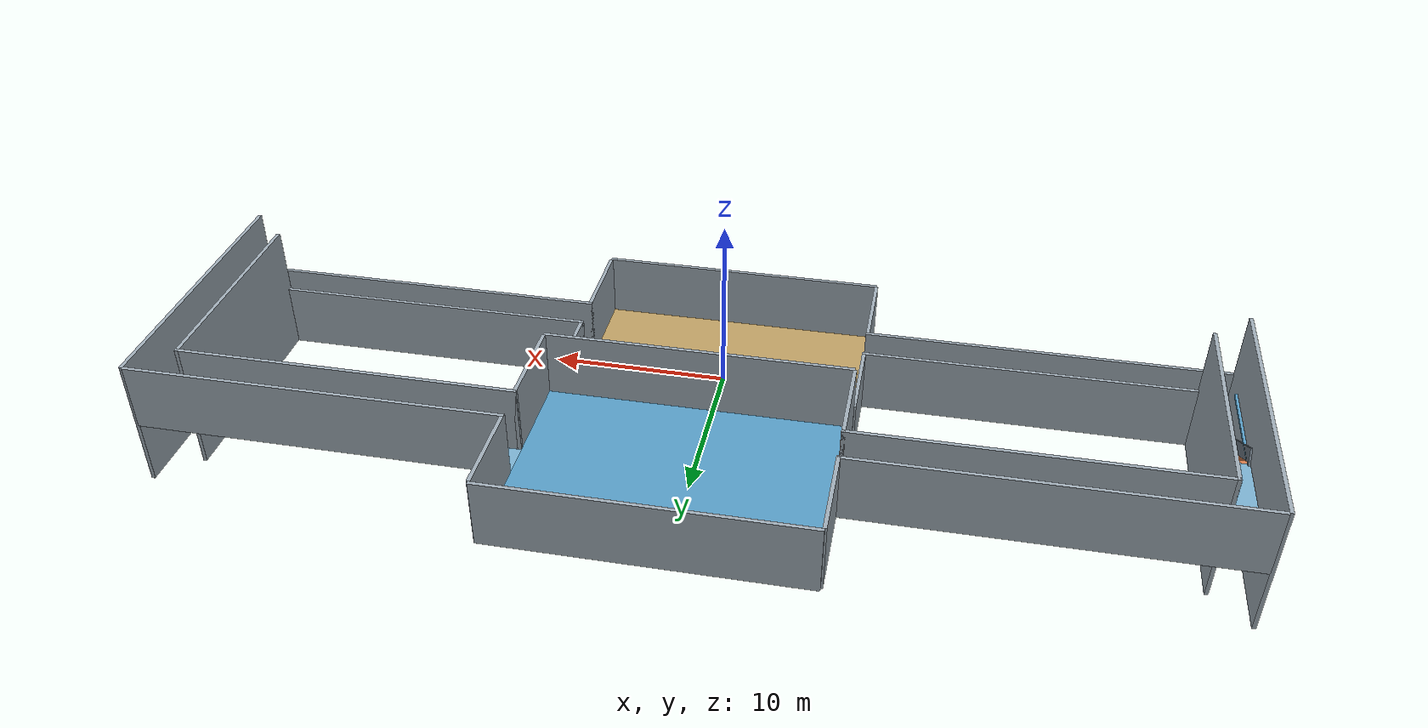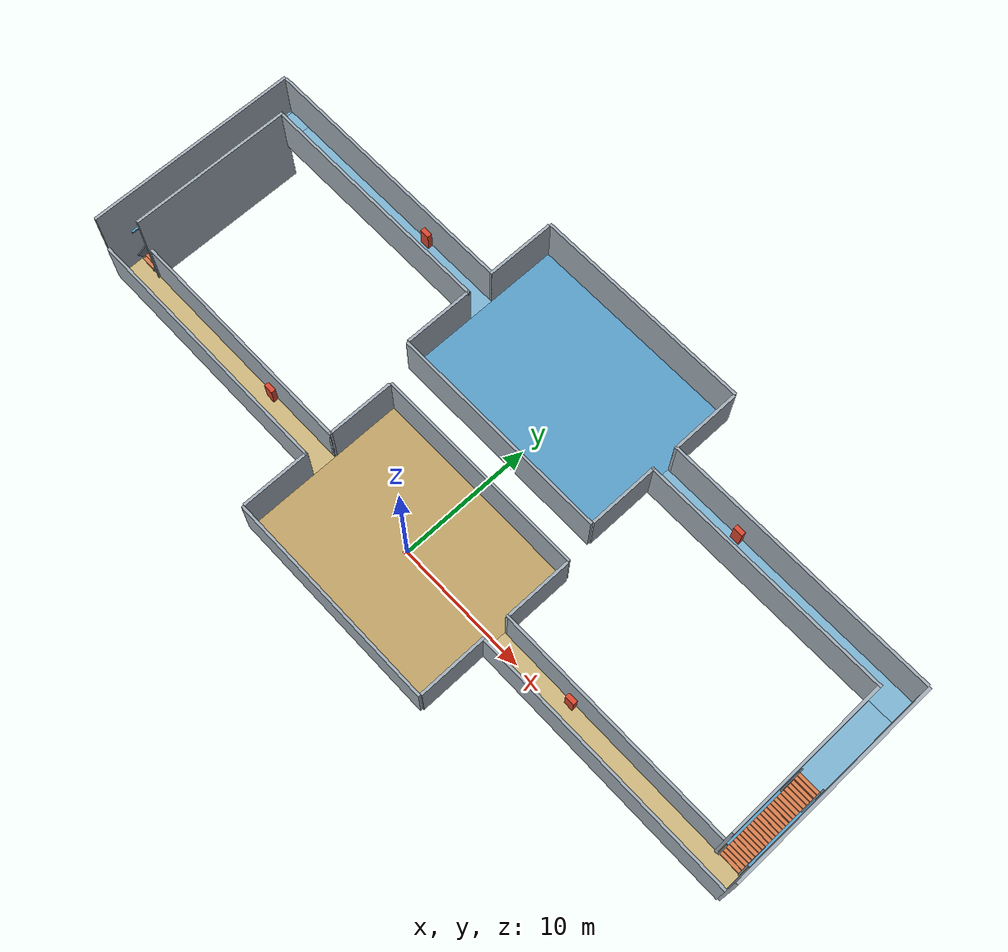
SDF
<sdf version="1.6"><world name="inspection_building"><gravity>0 0 -9.81</gravity><include><uri>model://sun</uri></include><physics name="ode" type="ode"><max_step_size>.002</max_step_size><real_time_update_rate>500</real_time_update_rate></physics><scene><shadows>false</shadows><ambient>.65 .65 .65 1</ambient><background>.78 .83 .90 1</background></scene><gui fullscreen="false"><camera name="user_camera"><pose>0 6.8 70 0 1.5707 0</pose><view_controller>orbit</view_controller></camera></gui><model name="open_two_floor_building"><static>true</static><link name="lower_hall_floor"><pose>0.0 0.0 -0.06 0 0 0</pose><collision name="lower_hall_floor_collision"><geometry><box><size>16 12 0.12</size></box></geometry></collision><visual name="lower_hall_floor_visual"><geometry><box><size>16 12 0.12</size></box></geometry><cast_shadows>false</cast_shadows><material><ambient>.74 .62 .39 1</ambient><diffuse>.74 .62 .39 1</diffuse></material></visual></link><link name="lower_left_corridor_floor"><pose>-18.0 0.0 -0.06 0 0 0</pose><collision name="lower_left_corridor_floor_collision"><geometry><box><size>20 1.8 0.12</size></box></geometry></collision><visual name="lower_left_corridor_floor_visual"><geometry><box><size>20 1.8 0.12</size></box></geometry><cast_shadows>false</cast_shadows><material><ambient>.79 .70 .48 1</ambient><diffuse>.79 .70 .48 1</diffuse></material></visual></link><link name="lower_right_corridor_floor"><pose>18.0 0.0 -0.06 0 0 0</pose><collision name="lower_right_corridor_floor_collision"><geometry><box><size>20 1.8 0.12</size></box></geometry></collision><visual name="lower_right_corridor_floor_visual"><geometry><box><size>20 1.8 0.12</size></box></geometry><cast_shadows>false</cast_shadows><material><ambient>.79 .70 .48 1</ambient><diffuse>.79 .70 .48 1</diffuse></material></visual></link><link name="lower_hall_south_wall"><pose>0.0 -6.1 1.8 0 0 0</pose><collision name="lower_hall_south_wall_collision"><geometry><box><size>16.2 0.2 3.6</size></box></geometry></collision><visual name="lower_hall_south_wall_visual"><geometry><box><size>16.2 0.2 3.6</size></box></geometry><cast_shadows>false</cast_shadows><material><ambient>.62 .67 .71 1</ambient><diffuse>.62 .67 .71 1</diffuse></material></visual></link><link name="lower_hall_north_wall"><pose>0.0 6.1 1.8 0 0 0</pose><collision name="lower_hall_north_wall_collision"><geometry><box><size>16.2 0.2 3.6</size></box></geometry></collision><visual name="lower_hall_north_wall_visual"><geometry><box><size>16.2 0.2 3.6</size></box></geometry><cast_shadows>false</cast_shadows><material><ambient>.62 .67 .71 1</ambient><diffuse>.62 .67 .71 1</diffuse></material></visual></link><link name="lower_hall_left_south"><pose>-8.1 -3.45 1.8 0 0 0</pose><collision name="lower_hall_left_south_collision"><geometry><box><size>0.2 5.1 3.6</size></box></geometry></collision><visual name="lower_hall_left_south_visual"><geometry><box><size>0.2 5.1 3.6</size></box></geometry><cast_shadows>false</cast_shadows><material><ambient>.62 .67 .71 1</ambient><diffuse>.62 .67 .71 1</diffuse></material></visual></link><link name="lower_hall_left_north"><pose>-8.1 3.45 1.8 0 0 0</pose><collision name="lower_hall_left_north_collision"><geometry><box><size>0.2 5.1 3.6</size></box></geometry></collision><visual name="lower_hall_left_north_visual"><geometry><box><size>0.2 5.1 3.6</size></box></geometry><cast_shadows>false</cast_shadows><material><ambient>.62 .67 .71 1</ambient><diffuse>.62 .67 .71 1</diffuse></material></visual></link><link name="lower_hall_right_south"><pose>8.1 -3.45 1.8 0 0 0</pose><collision name="lower_hall_right_south_collision"><geometry><box><size>0.2 5.1 3.6</size></box></geometry></collision><visual name="lower_hall_right_south_visual"><geometry><box><size>0.2 5.1 3.6</size></box></geometry><cast_shadows>false</cast_shadows><material><ambient>.62 .67 .71 1</ambient><diffuse>.62 .67 .71 1</diffuse></material></visual></link><link name="lower_hall_right_north"><pose>8.1 3.45 1.8 0 0 0</pose><collision name="lower_hall_right_north_collision"><geometry><box><size>0.2 5.1 3.6</size></box></geometry></collision><visual name="lower_hall_right_north_visual"><geometry><box><size>0.2 5.1 3.6</size></box></geometry><cast_shadows>false</cast_shadows><material><ambient>.62 .67 .71 1</ambient><diffuse>.62 .67 .71 1</diffuse></material></visual></link><link name="lower_left_corridor_south"><pose>-18.0 -1 1.8 0 0 0</pose><collision name="lower_left_corridor_south_collision"><geometry><box><size>20 0.2 3.6</size></box></geometry></collision><visual name="lower_left_corridor_south_visual"><geometry><box><size>20 0.2 3.6</size></box></geometry><cast_shadows>false</cast_shadows><material><ambient>.62 .67 .71 1</ambient><diffuse>.62 .67 .71 1</diffuse></material></visual></link><link name="lower_right_corridor_south"><pose>18.0 -1 1.8 0 0 0</pose><collision name="lower_right_corridor_south_collision"><geometry><box><size>20 0.2 3.6</size></box></geometry></collision><visual name="lower_right_corridor_south_visual"><geometry><box><size>20 0.2 3.6</size></box></geometry><cast_shadows>false</cast_shadows><material><ambient>.62 .67 .71 1</ambient><diffuse>.62 .67 .71 1</diffuse></material></visual></link><link name="lower_left_corridor_north"><pose>-17.1 1 1.8 0 0 0</pose><collision name="lower_left_corridor_north_collision"><geometry><box><size>18.2 0.2 3.6</size></box></geometry></collision><visual name="lower_left_corridor_north_visual"><geometry><box><size>18.2 0.2 3.6</size></box></geometry><cast_shadows>false</cast_shadows><material><ambient>.62 .67 .71 1</ambient><diffuse>.62 .67 .71 1</diffuse></material></visual></link><link name="lower_right_corridor_north"><pose>17.1 1 1.8 0 0 0</pose><collision name="lower_right_corridor_north_collision"><geometry><box><size>18.2 0.2 3.6</size></box></geometry></collision><visual name="lower_right_corridor_north_visual"><geometry><box><size>18.2 0.2 3.6</size></box></geometry><cast_shadows>false</cast_shadows><material><ambient>.62 .67 .71 1</ambient><diffuse>.62 .67 .71 1</diffuse></material></visual></link><link name="upper_hall_floor"><pose>0.0 13.8 3.54 0 0 0</pose><collision name="upper_hall_floor_collision"><geometry><box><size>16 12.0 0.12</size></box></geometry></collision><visual name="upper_hall_floor_visual"><geometry><box><size>16 12.0 0.12</size></box></geometry><cast_shadows>false</cast_shadows><material><ambient>.34 .61 .77 1</ambient><diffuse>.34 .61 .77 1</diffuse></material></visual></link><link name="upper_left_corridor_floor"><pose>-18.0 13.8 3.54 0 0 0</pose><collision name="upper_left_corridor_floor_collision"><geometry><box><size>20 1.799999999999999 0.12</size></box></geometry></collision><visual name="upper_left_corridor_floor_visual"><geometry><box><size>20 1.799999999999999 0.12</size></box></geometry><cast_shadows>false</cast_shadows><material><ambient>.48 .69 .81 1</ambient><diffuse>.48 .69 .81 1</diffuse></material></visual></link><link name="upper_right_corridor_floor"><pose>18.0 13.8 3.54 0 0 0</pose><collision name="upper_right_corridor_floor_collision"><geometry><box><size>20 1.799999999999999 0.12</size></box></geometry></collision><visual name="upper_right_corridor_floor_visual"><geometry><box><size>20 1.799999999999999 0.12</size></box></geometry><cast_shadows>false</cast_shadows><material><ambient>.48 .69 .81 1</ambient><diffuse>.48 .69 .81 1</diffuse></material></visual></link><link name="upper_hall_front_wall"><pose>0.0 7.7 5.4 0 0 0</pose><collision name="upper_hall_front_wall_collision"><geometry><box><size>16.2 0.2 3.6</size></box></geometry></collision><visual name="upper_hall_front_wall_visual"><geometry><box><size>16.2 0.2 3.6</size></box></geometry><cast_shadows>false</cast_shadows><material><ambient>.62 .67 .71 1</ambient><diffuse>.62 .67 .71 1</diffuse></material></visual></link><link name="upper_hall_back_wall"><pose>0.0 19.9 5.4 0 0 0</pose><collision name="upper_hall_back_wall_collision"><geometry><box><size>16.2 0.2 3.6</size></box></geometry></collision><visual name="upper_hall_back_wall_visual"><geometry><box><size>16.2 0.2 3.6</size></box></geometry><cast_shadows>false</cast_shadows><material><ambient>.62 .67 .71 1</ambient><diffuse>.62 .67 .71 1</diffuse></material></visual></link><link name="upper_hall_left_front"><pose>-8.1 10.35 5.4 0 0 0</pose><collision name="upper_hall_left_front_collision"><geometry><box><size>0.2 5.1000000000000005 3.6</size></box></geometry></collision><visual name="upper_hall_left_front_visual"><geometry><box><size>0.2 5.1000000000000005 3.6</size></box></geometry><cast_shadows>false</cast_shadows><material><ambient>.62 .67 .71 1</ambient><diffuse>.62 .67 .71 1</diffuse></material></visual></link><link name="upper_hall_left_back"><pose>-8.1 17.25 5.4 0 0 0</pose><collision name="upper_hall_left_back_collision"><geometry><box><size>0.2 5.100000000000001 3.6</size></box></geometry></collision><visual name="upper_hall_left_back_visual"><geometry><box><size>0.2 5.100000000000001 3.6</size></box></geometry><cast_shadows>false</cast_shadows><material><ambient>.62 .67 .71 1</ambient><diffuse>.62 .67 .71 1</diffuse></material></visual></link><link name="upper_hall_right_front"><pose>8.1 10.35 5.4 0 0 0</pose><collision name="upper_hall_right_front_collision"><geometry><box><size>0.2 5.1000000000000005 3.6</size></box></geometry></collision><visual name="upper_hall_right_front_visual"><geometry><box><size>0.2 5.1000000000000005 3.6</size></box></geometry><cast_shadows>false</cast_shadows><material><ambient>.62 .67 .71 1</ambient><diffuse>.62 .67 .71 1</diffuse></material></visual></link><link name="upper_hall_right_back"><pose>8.1 17.25 5.4 0 0 0</pose><collision name="upper_hall_right_back_collision"><geometry><box><size>0.2 5.100000000000001 3.6</size></box></geometry></collision><visual name="upper_hall_right_back_visual"><geometry><box><size>0.2 5.100000000000001 3.6</size></box></geometry><cast_shadows>false</cast_shadows><material><ambient>.62 .67 .71 1</ambient><diffuse>.62 .67 .71 1</diffuse></material></visual></link><link name="upper_left_corridor_front"><pose>-17.1 12.8 5.4 0 0 0</pose><collision name="upper_left_corridor_front_collision"><geometry><box><size>18.2 0.2 3.6</size></box></geometry></collision><visual name="upper_left_corridor_front_visual"><geometry><box><size>18.2 0.2 3.6</size></box></geometry><cast_shadows>false</cast_shadows><material><ambient>.62 .67 .71 1</ambient><diffuse>.62 .67 .71 1</diffuse></material></visual></link><link name="upper_right_corridor_front"><pose>17.1 12.8 5.4 0 0 0</pose><collision name="upper_right_corridor_front_collision"><geometry><box><size>18.2 0.2 3.6</size></box></geometry></collision><visual name="upper_right_corridor_front_visual"><geometry><box><size>18.2 0.2 3.6</size></box></geometry><cast_shadows>false</cast_shadows><material><ambient>.62 .67 .71 1</ambient><diffuse>.62 .67 .71 1</diffuse></material></visual></link><link name="upper_left_corridor_back"><pose>-18.0 14.8 5.4 0 0 0</pose><collision name="upper_left_corridor_back_collision"><geometry><box><size>20 0.2 3.6</size></box></geometry></collision><visual name="upper_left_corridor_back_visual"><geometry><box><size>20 0.2 3.6</size></box></geometry><cast_shadows>false</cast_shadows><material><ambient>.62 .67 .71 1</ambient><diffuse>.62 .67 .71 1</diffuse></material></visual></link><link name="upper_right_corridor_back"><pose>18.0 14.8 5.4 0 0 0</pose><collision name="upper_right_corridor_back_collision"><geometry><box><size>20 0.2 3.6</size></box></geometry></collision><visual name="upper_right_corridor_back_visual"><geometry><box><size>20 0.2 3.6</size></box></geometry><cast_shadows>false</cast_shadows><material><ambient>.62 .67 .71 1</ambient><diffuse>.62 .67 .71 1</diffuse></material></visual></link><link name="left_stair_base"><pose>-27.1 3.9000000000000004 -0.06 0 0 0</pose><collision name="left_stair_base_collision"><geometry><box><size>1.7999999999999972 6.0 0.12</size></box></geometry></collision><visual name="left_stair_base_visual"><geometry><box><size>1.7999999999999972 6.0 0.12</size></box></geometry><cast_shadows>false</cast_shadows><material><ambient>.72 .61 .39 1</ambient><diffuse>.72 .61 .39 1</diffuse></material></visual></link><link name="left_upper_stair_ledge_-1"><pose>-27.925 3.9000000000000004 3.54 0 0 0</pose><collision name="left_upper_stair_ledge_-1_collision"><geometry><box><size>0.14999999999999858 6.0 0.12</size></box></geometry></collision><visual name="left_upper_stair_ledge_-1_visual"><geometry><box><size>0.14999999999999858 6.0 0.12</size></box></geometry><cast_shadows>false</cast_shadows><material><ambient>.34 .61 .77 1</ambient><diffuse>.34 .61 .77 1</diffuse></material></visual></link><link name="left_upper_stair_ledge_1"><pose>-26.275000000000002 3.9000000000000004 3.54 0 0 0</pose><collision name="left_upper_stair_ledge_1_collision"><geometry><box><size>0.14999999999999858 6.0 0.12</size></box></geometry></collision><visual name="left_upper_stair_ledge_1_visual"><geometry><box><size>0.14999999999999858 6.0 0.12</size></box></geometry><cast_shadows>false</cast_shadows><material><ambient>.34 .61 .77 1</ambient><diffuse>.34 .61 .77 1</diffuse></material></visual></link><link name="left_upper_return_corridor"><pose>-27.1 10.8 3.54 0 0 0</pose><collision name="left_upper_return_corridor_collision"><geometry><box><size>1.7999999999999972 7.799999999999999 0.12</size></box></geometry></collision><visual name="left_upper_return_corridor_visual"><geometry><box><size>1.7999999999999972 7.799999999999999 0.12</size></box></geometry><cast_shadows>false</cast_shadows><material><ambient>.48 .69 .81 1</ambient><diffuse>.48 .69 .81 1</diffuse></material></visual></link><link name="left_shaft_outer_wall"><pose>-28.1 6.9 3.6 0 0 0</pose><collision name="left_shaft_outer_wall_collision"><geometry><box><size>0.2 15.8 7.2</size></box></geometry></collision><visual name="left_shaft_outer_wall_visual"><geometry><box><size>0.2 15.8 7.2</size></box></geometry><cast_shadows>false</cast_shadows><material><ambient>.62 .67 .71 1</ambient><diffuse>.62 .67 .71 1</diffuse></material></visual></link><link name="left_shaft_inner_wall"><pose>-26.1 6.8500000000000005 3.6 0 0 0</pose><collision name="left_shaft_inner_wall_collision"><geometry><box><size>0.2 12.1 7.2</size></box></geometry></collision><visual name="left_shaft_inner_wall_visual"><geometry><box><size>0.2 12.1 7.2</size></box></geometry><cast_shadows>false</cast_shadows><material><ambient>.62 .67 .71 1</ambient><diffuse>.62 .67 .71 1</diffuse></material></visual></link><link name="left_stair_step_0"><pose>-27.1 1.025 0.075 0 0 0</pose><collision name="left_stair_step_0_collision"><geometry><box><size>1.5 0.25 0.15</size></box></geometry></collision><visual name="left_stair_step_0_visual"><geometry><box><size>1.5 0.25 0.15</size></box></geometry><cast_shadows>false</cast_shadows><material><ambient>.83 .48 .29 1</ambient><diffuse>.83 .48 .29 1</diffuse></material></visual></link><link name="left_stair_step_1"><pose>-27.1 1.275 0.15 0 0 0</pose><collision name="left_stair_step_1_collision"><geometry><box><size>1.5 0.25 0.3</size></box></geometry></collision><visual name="left_stair_step_1_visual"><geometry><box><size>1.5 0.25 0.3</size></box></geometry><cast_shadows>false</cast_shadows><material><ambient>.83 .48 .29 1</ambient><diffuse>.83 .48 .29 1</diffuse></material></visual></link><link name="left_stair_step_2"><pose>-27.1 1.525 0.22499999999999998 0 0 0</pose><collision name="left_stair_step_2_collision"><geometry><box><size>1.5 0.25 0.44999999999999996</size></box></geometry></collision><visual name="left_stair_step_2_visual"><geometry><box><size>1.5 0.25 0.44999999999999996</size></box></geometry><cast_shadows>false</cast_shadows><material><ambient>.83 .48 .29 1</ambient><diffuse>.83 .48 .29 1</diffuse></material></visual></link><link name="left_stair_step_3"><pose>-27.1 1.775 0.3 0 0 0</pose><collision name="left_stair_step_3_collision"><geometry><box><size>1.5 0.25 0.6</size></box></geometry></collision><visual name="left_stair_step_3_visual"><geometry><box><size>1.5 0.25 0.6</size></box></geometry><cast_shadows>false</cast_shadows><material><ambient>.83 .48 .29 1</ambient><diffuse>.83 .48 .29 1</diffuse></material></visual></link><link name="left_stair_step_4"><pose>-27.1 2.025 0.375 0 0 0</pose><collision name="left_stair_step_4_collision"><geometry><box><size>1.5 0.25 0.75</size></box></geometry></collision><visual name="left_stair_step_4_visual"><geometry><box><size>1.5 0.25 0.75</size></box></geometry><cast_shadows>false</cast_shadows><material><ambient>.83 .48 .29 1</ambient><diffuse>.83 .48 .29 1</diffuse></material></visual></link><link name="left_stair_step_5"><pose>-27.1 2.275 0.44999999999999996 0 0 0</pose><collision name="left_stair_step_5_collision"><geometry><box><size>1.5 0.25 0.8999999999999999</size></box></geometry></collision><visual name="left_stair_step_5_visual"><geometry><box><size>1.5 0.25 0.8999999999999999</size></box></geometry><cast_shadows>false</cast_shadows><material><ambient>.83 .48 .29 1</ambient><diffuse>.83 .48 .29 1</diffuse></material></visual></link><link name="left_stair_step_6"><pose>-27.1 2.525 0.525 0 0 0</pose><collision name="left_stair_step_6_collision"><geometry><box><size>1.5 0.25 1.05</size></box></geometry></collision><visual name="left_stair_step_6_visual"><geometry><box><size>1.5 0.25 1.05</size></box></geometry><cast_shadows>false</cast_shadows><material><ambient>.83 .48 .29 1</ambient><diffuse>.83 .48 .29 1</diffuse></material></visual></link><link name="left_stair_step_7"><pose>-27.1 2.775 0.6 0 0 0</pose><collision name="left_stair_step_7_collision"><geometry><box><size>1.5 0.25 1.2</size></box></geometry></collision><visual name="left_stair_step_7_visual"><geometry><box><size>1.5 0.25 1.2</size></box></geometry><cast_shadows>false</cast_shadows><material><ambient>.83 .48 .29 1</ambient><diffuse>.83 .48 .29 1</diffuse></material></visual></link><link name="left_stair_step_8"><pose>-27.1 3.025 0.6749999999999999 0 0 0</pose><collision name="left_stair_step_8_collision"><geometry><box><size>1.5 0.25 1.3499999999999999</size></box></geometry></collision><visual name="left_stair_step_8_visual"><geometry><box><size>1.5 0.25 1.3499999999999999</size></box></geometry><cast_shadows>false</cast_shadows><material><ambient>.83 .48 .29 1</ambient><diffuse>.83 .48 .29 1</diffuse></material></visual></link><link name="left_stair_step_9"><pose>-27.1 3.275 0.75 0 0 0</pose><collision name="left_stair_step_9_collision"><geometry><box><size>1.5 0.25 1.5</size></box></geometry></collision><visual name="left_stair_step_9_visual"><geometry><box><size>1.5 0.25 1.5</size></box></geometry><cast_shadows>false</cast_shadows><material><ambient>.83 .48 .29 1</ambient><diffuse>.83 .48 .29 1</diffuse></material></visual></link><link name="left_stair_step_10"><pose>-27.1 3.525 0.825 0 0 0</pose><collision name="left_stair_step_10_collision"><geometry><box><size>1.5 0.25 1.65</size></box></geometry></collision><visual name="left_stair_step_10_visual"><geometry><box><size>1.5 0.25 1.65</size></box></geometry><cast_shadows>false</cast_shadows><material><ambient>.83 .48 .29 1</ambient><diffuse>.83 .48 .29 1</diffuse></material></visual></link><link name="left_stair_step_11"><pose>-27.1 3.775 0.8999999999999999 0 0 0</pose><collision name="left_stair_step_11_collision"><geometry><box><size>1.5 0.25 1.7999999999999998</size></box></geometry></collision><visual name="left_stair_step_11_visual"><geometry><box><size>1.5 0.25 1.7999999999999998</size></box></geometry><cast_shadows>false</cast_shadows><material><ambient>.83 .48 .29 1</ambient><diffuse>.83 .48 .29 1</diffuse></material></visual></link><link name="left_stair_step_12"><pose>-27.1 4.025 0.975 0 0 0</pose><collision name="left_stair_step_12_collision"><geometry><box><size>1.5 0.25 1.95</size></box></geometry></collision><visual name="left_stair_step_12_visual"><geometry><box><size>1.5 0.25 1.95</size></box></geometry><cast_shadows>false</cast_shadows><material><ambient>.83 .48 .29 1</ambient><diffuse>.83 .48 .29 1</diffuse></material></visual></link><link name="left_stair_step_13"><pose>-27.1 4.275 1.05 0 0 0</pose><collision name="left_stair_step_13_collision"><geometry><box><size>1.5 0.25 2.1</size></box></geometry></collision><visual name="left_stair_step_13_visual"><geometry><box><size>1.5 0.25 2.1</size></box></geometry><cast_shadows>false</cast_shadows><material><ambient>.83 .48 .29 1</ambient><diffuse>.83 .48 .29 1</diffuse></material></visual></link><link name="left_stair_step_14"><pose>-27.1 4.525 1.125 0 0 0</pose><collision name="left_stair_step_14_collision"><geometry><box><size>1.5 0.25 2.25</size></box></geometry></collision><visual name="left_stair_step_14_visual"><geometry><box><size>1.5 0.25 2.25</size></box></geometry><cast_shadows>false</cast_shadows><material><ambient>.83 .48 .29 1</ambient><diffuse>.83 .48 .29 1</diffuse></material></visual></link><link name="left_stair_step_15"><pose>-27.1 4.775 1.2 0 0 0</pose><collision name="left_stair_step_15_collision"><geometry><box><size>1.5 0.25 2.4</size></box></geometry></collision><visual name="left_stair_step_15_visual"><geometry><box><size>1.5 0.25 2.4</size></box></geometry><cast_shadows>false</cast_shadows><material><ambient>.83 .48 .29 1</ambient><diffuse>.83 .48 .29 1</diffuse></material></visual></link><link name="left_stair_step_16"><pose>-27.1 5.025 1.275 0 0 0</pose><collision name="left_stair_step_16_collision"><geometry><box><size>1.5 0.25 2.55</size></box></geometry></collision><visual name="left_stair_step_16_visual"><geometry><box><size>1.5 0.25 2.55</size></box></geometry><cast_shadows>false</cast_shadows><material><ambient>.83 .48 .29 1</ambient><diffuse>.83 .48 .29 1</diffuse></material></visual></link><link name="left_stair_step_17"><pose>-27.1 5.275 1.3499999999999999 0 0 0</pose><collision name="left_stair_step_17_collision"><geometry><box><size>1.5 0.25 2.6999999999999997</size></box></geometry></collision><visual name="left_stair_step_17_visual"><geometry><box><size>1.5 0.25 2.6999999999999997</size></box></geometry><cast_shadows>false</cast_shadows><material><ambient>.83 .48 .29 1</ambient><diffuse>.83 .48 .29 1</diffuse></material></visual></link><link name="left_stair_step_18"><pose>-27.1 5.525 1.425 0 0 0</pose><collision name="left_stair_step_18_collision"><geometry><box><size>1.5 0.25 2.85</size></box></geometry></collision><visual name="left_stair_step_18_visual"><geometry><box><size>1.5 0.25 2.85</size></box></geometry><cast_shadows>false</cast_shadows><material><ambient>.83 .48 .29 1</ambient><diffuse>.83 .48 .29 1</diffuse></material></visual></link><link name="left_stair_step_19"><pose>-27.1 5.775 1.5 0 0 0</pose><collision name="left_stair_step_19_collision"><geometry><box><size>1.5 0.25 3.0</size></box></geometry></collision><visual name="left_stair_step_19_visual"><geometry><box><size>1.5 0.25 3.0</size></box></geometry><cast_shadows>false</cast_shadows><material><ambient>.83 .48 .29 1</ambient><diffuse>.83 .48 .29 1</diffuse></material></visual></link><link name="left_stair_step_20"><pose>-27.1 6.025 1.575 0 0 0</pose><collision name="left_stair_step_20_collision"><geometry><box><size>1.5 0.25 3.15</size></box></geometry></collision><visual name="left_stair_step_20_visual"><geometry><box><size>1.5 0.25 3.15</size></box></geometry><cast_shadows>false</cast_shadows><material><ambient>.83 .48 .29 1</ambient><diffuse>.83 .48 .29 1</diffuse></material></visual></link><link name="left_stair_step_21"><pose>-27.1 6.275 1.65 0 0 0</pose><collision name="left_stair_step_21_collision"><geometry><box><size>1.5 0.25 3.3</size></box></geometry></collision><visual name="left_stair_step_21_visual"><geometry><box><size>1.5 0.25 3.3</size></box></geometry><cast_shadows>false</cast_shadows><material><ambient>.83 .48 .29 1</ambient><diffuse>.83 .48 .29 1</diffuse></material></visual></link><link name="left_stair_step_22"><pose>-27.1 6.525 1.7249999999999999 0 0 0</pose><collision name="left_stair_step_22_collision"><geometry><box><size>1.5 0.25 3.4499999999999997</size></box></geometry></collision><visual name="left_stair_step_22_visual"><geometry><box><size>1.5 0.25 3.4499999999999997</size></box></geometry><cast_shadows>false</cast_shadows><material><ambient>.83 .48 .29 1</ambient><diffuse>.83 .48 .29 1</diffuse></material></visual></link><link name="left_stair_step_23"><pose>-27.1 6.775 1.7999999999999998 0 0 0</pose><collision name="left_stair_step_23_collision"><geometry><box><size>1.5 0.25 3.5999999999999996</size></box></geometry></collision><visual name="left_stair_step_23_visual"><geometry><box><size>1.5 0.25 3.5999999999999996</size></box></geometry><cast_shadows>false</cast_shadows><material><ambient>.83 .48 .29 1</ambient><diffuse>.83 .48 .29 1</diffuse></material></visual></link><link name="left_stair_rail_-1"><pose>-27.900000000000002 3.9 2.25 0.5404195002705842 0 0</pose><collision name="left_stair_rail_-1_collision"><geometry><box><size>0.1 6.99714227381436 0.9</size></box></geometry></collision><visual name="left_stair_rail_-1_visual"><geometry><box><size>0.1 6.99714227381436 0.9</size></box></geometry><cast_shadows>false</cast_shadows><material><ambient>.42 .47 .51 1</ambient><diffuse>.42 .47 .51 1</diffuse></material></visual></link><link name="left_stair_rail_1"><pose>-26.3 3.9 2.25 0.5404195002705842 0 0</pose><collision name="left_stair_rail_1_collision"><geometry><box><size>0.1 6.99714227381436 0.9</size></box></geometry></collision><visual name="left_stair_rail_1_visual"><geometry><box><size>0.1 6.99714227381436 0.9</size></box></geometry><cast_shadows>false</cast_shadows><material><ambient>.42 .47 .51 1</ambient><diffuse>.42 .47 .51 1</diffuse></material></visual></link><link name="right_stair_base"><pose>27.1 3.9000000000000004 -0.06 0 0 0</pose><collision name="right_stair_base_collision"><geometry><box><size>1.7999999999999972 6.0 0.12</size></box></geometry></collision><visual name="right_stair_base_visual"><geometry><box><size>1.7999999999999972 6.0 0.12</size></box></geometry><cast_shadows>false</cast_shadows><material><ambient>.72 .61 .39 1</ambient><diffuse>.72 .61 .39 1</diffuse></material></visual></link><link name="right_upper_stair_ledge_-1"><pose>26.275000000000002 3.9000000000000004 3.54 0 0 0</pose><collision name="right_upper_stair_ledge_-1_collision"><geometry><box><size>0.14999999999999858 6.0 0.12</size></box></geometry></collision><visual name="right_upper_stair_ledge_-1_visual"><geometry><box><size>0.14999999999999858 6.0 0.12</size></box></geometry><cast_shadows>false</cast_shadows><material><ambient>.34 .61 .77 1</ambient><diffuse>.34 .61 .77 1</diffuse></material></visual></link><link name="right_upper_stair_ledge_1"><pose>27.925 3.9000000000000004 3.54 0 0 0</pose><collision name="right_upper_stair_ledge_1_collision"><geometry><box><size>0.14999999999999858 6.0 0.12</size></box></geometry></collision><visual name="right_upper_stair_ledge_1_visual"><geometry><box><size>0.14999999999999858 6.0 0.12</size></box></geometry><cast_shadows>false</cast_shadows><material><ambient>.34 .61 .77 1</ambient><diffuse>.34 .61 .77 1</diffuse></material></visual></link><link name="right_upper_return_corridor"><pose>27.1 10.8 3.54 0 0 0</pose><collision name="right_upper_return_corridor_collision"><geometry><box><size>1.7999999999999972 7.799999999999999 0.12</size></box></geometry></collision><visual name="right_upper_return_corridor_visual"><geometry><box><size>1.7999999999999972 7.799999999999999 0.12</size></box></geometry><cast_shadows>false</cast_shadows><material><ambient>.48 .69 .81 1</ambient><diffuse>.48 .69 .81 1</diffuse></material></visual></link><link name="right_shaft_outer_wall"><pose>28.1 6.9 3.6 0 0 0</pose><collision name="right_shaft_outer_wall_collision"><geometry><box><size>0.2 15.8 7.2</size></box></geometry></collision><visual name="right_shaft_outer_wall_visual"><geometry><box><size>0.2 15.8 7.2</size></box></geometry><cast_shadows>false</cast_shadows><material><ambient>.62 .67 .71 1</ambient><diffuse>.62 .67 .71 1</diffuse></material></visual></link><link name="right_shaft_inner_wall"><pose>26.1 6.8500000000000005 3.6 0 0 0</pose><collision name="right_shaft_inner_wall_collision"><geometry><box><size>0.2 12.1 7.2</size></box></geometry></collision><visual name="right_shaft_inner_wall_visual"><geometry><box><size>0.2 12.1 7.2</size></box></geometry><cast_shadows>false</cast_shadows><material><ambient>.62 .67 .71 1</ambient><diffuse>.62 .67 .71 1</diffuse></material></visual></link><link name="right_stair_step_0"><pose>27.1 1.025 0.075 0 0 0</pose><collision name="right_stair_step_0_collision"><geometry><box><size>1.5 0.25 0.15</size></box></geometry></collision><visual name="right_stair_step_0_visual"><geometry><box><size>1.5 0.25 0.15</size></box></geometry><cast_shadows>false</cast_shadows><material><ambient>.83 .48 .29 1</ambient><diffuse>.83 .48 .29 1</diffuse></material></visual></link><link name="right_stair_step_1"><pose>27.1 1.275 0.15 0 0 0</pose><collision name="right_stair_step_1_collision"><geometry><box><size>1.5 0.25 0.3</size></box></geometry></collision><visual name="right_stair_step_1_visual"><geometry><box><size>1.5 0.25 0.3</size></box></geometry><cast_shadows>false</cast_shadows><material><ambient>.83 .48 .29 1</ambient><diffuse>.83 .48 .29 1</diffuse></material></visual></link><link name="right_stair_step_2"><pose>27.1 1.525 0.22499999999999998 0 0 0</pose><collision name="right_stair_step_2_collision"><geometry><box><size>1.5 0.25 0.44999999999999996</size></box></geometry></collision><visual name="right_stair_step_2_visual"><geometry><box><size>1.5 0.25 0.44999999999999996</size></box></geometry><cast_shadows>false</cast_shadows><material><ambient>.83 .48 .29 1</ambient><diffuse>.83 .48 .29 1</diffuse></material></visual></link><link name="right_stair_step_3"><pose>27.1 1.775 0.3 0 0 0</pose><collision name="right_stair_step_3_collision"><geometry><box><size>1.5 0.25 0.6</size></box></geometry></collision><visual name="right_stair_step_3_visual"><geometry><box><size>1.5 0.25 0.6</size></box></geometry><cast_shadows>false</cast_shadows><material><ambient>.83 .48 .29 1</ambient><diffuse>.83 .48 .29 1</diffuse></material></visual></link><link name="right_stair_step_4"><pose>27.1 2.025 0.375 0 0 0</pose><collision name="right_stair_step_4_collision"><geometry><box><size>1.5 0.25 0.75</size></box></geometry></collision><visual name="right_stair_step_4_visual"><geometry><box><size>1.5 0.25 0.75</size></box></geometry><cast_shadows>false</cast_shadows><material><ambient>.83 .48 .29 1</ambient><diffuse>.83 .48 .29 1</diffuse></material></visual></link><link name="right_stair_step_5"><pose>27.1 2.275 0.44999999999999996 0 0 0</pose><collision name="right_stair_step_5_collision"><geometry><box><size>1.5 0.25 0.8999999999999999</size></box></geometry></collision><visual name="right_stair_step_5_visual"><geometry><box><size>1.5 0.25 0.8999999999999999</size></box></geometry><cast_shadows>false</cast_shadows><material><ambient>.83 .48 .29 1</ambient><diffuse>.83 .48 .29 1</diffuse></material></visual></link><link name="right_stair_step_6"><pose>27.1 2.525 0.525 0 0 0</pose><collision name="right_stair_step_6_collision"><geometry><box><size>1.5 0.25 1.05</size></box></geometry></collision><visual name="right_stair_step_6_visual"><geometry><box><size>1.5 0.25 1.05</size></box></geometry><cast_shadows>false</cast_shadows><material><ambient>.83 .48 .29 1</ambient><diffuse>.83 .48 .29 1</diffuse></material></visual></link><link name="right_stair_step_7"><pose>27.1 2.775 0.6 0 0 0</pose><collision name="right_stair_step_7_collision"><geometry><box><size>1.5 0.25 1.2</size></box></geometry></collision><visual name="right_stair_step_7_visual"><geometry><box><size>1.5 0.25 1.2</size></box></geometry><cast_shadows>false</cast_shadows><material><ambient>.83 .48 .29 1</ambient><diffuse>.83 .48 .29 1</diffuse></material></visual></link><link name="right_stair_step_8"><pose>27.1 3.025 0.6749999999999999 0 0 0</pose><collision name="right_stair_step_8_collision"><geometry><box><size>1.5 0.25 1.3499999999999999</size></box></geometry></collision><visual name="right_stair_step_8_visual"><geometry><box><size>1.5 0.25 1.3499999999999999</size></box></geometry><cast_shadows>false</cast_shadows><material><ambient>.83 .48 .29 1</ambient><diffuse>.83 .48 .29 1</diffuse></material></visual></link><link name="right_stair_step_9"><pose>27.1 3.275 0.75 0 0 0</pose><collision name="right_stair_step_9_collision"><geometry><box><size>1.5 0.25 1.5</size></box></geometry></collision><visual name="right_stair_step_9_visual"><geometry><box><size>1.5 0.25 1.5</size></box></geometry><cast_shadows>false</cast_shadows><material><ambient>.83 .48 .29 1</ambient><diffuse>.83 .48 .29 1</diffuse></material></visual></link><link name="right_stair_step_10"><pose>27.1 3.525 0.825 0 0 0</pose><collision name="right_stair_step_10_collision"><geometry><box><size>1.5 0.25 1.65</size></box></geometry></collision><visual name="right_stair_step_10_visual"><geometry><box><size>1.5 0.25 1.65</size></box></geometry><cast_shadows>false</cast_shadows><material><ambient>.83 .48 .29 1</ambient><diffuse>.83 .48 .29 1</diffuse></material></visual></link><link name="right_stair_step_11"><pose>27.1 3.775 0.8999999999999999 0 0 0</pose><collision name="right_stair_step_11_collision"><geometry><box><size>1.5 0.25 1.7999999999999998</size></box></geometry></collision><visual name="right_stair_step_11_visual"><geometry><box><size>1.5 0.25 1.7999999999999998</size></box></geometry><cast_shadows>false</cast_shadows><material><ambient>.83 .48 .29 1</ambient><diffuse>.83 .48 .29 1</diffuse></material></visual></link><link name="right_stair_step_12"><pose>27.1 4.025 0.975 0 0 0</pose><collision name="right_stair_step_12_collision"><geometry><box><size>1.5 0.25 1.95</size></box></geometry></collision><visual name="right_stair_step_12_visual"><geometry><box><size>1.5 0.25 1.95</size></box></geometry><cast_shadows>false</cast_shadows><material><ambient>.83 .48 .29 1</ambient><diffuse>.83 .48 .29 1</diffuse></material></visual></link><link name="right_stair_step_13"><pose>27.1 4.275 1.05 0 0 0</pose><collision name="right_stair_step_13_collision"><geometry><box><size>1.5 0.25 2.1</size></box></geometry></collision><visual name="right_stair_step_13_visual"><geometry><box><size>1.5 0.25 2.1</size></box></geometry><cast_shadows>false</cast_shadows><material><ambient>.83 .48 .29 1</ambient><diffuse>.83 .48 .29 1</diffuse></material></visual></link><link name="right_stair_step_14"><pose>27.1 4.525 1.125 0 0 0</pose><collision name="right_stair_step_14_collision"><geometry><box><size>1.5 0.25 2.25</size></box></geometry></collision><visual name="right_stair_step_14_visual"><geometry><box><size>1.5 0.25 2.25</size></box></geometry><cast_shadows>false</cast_shadows><material><ambient>.83 .48 .29 1</ambient><diffuse>.83 .48 .29 1</diffuse></material></visual></link><link name="right_stair_step_15"><pose>27.1 4.775 1.2 0 0 0</pose><collision name="right_stair_step_15_collision"><geometry><box><size>1.5 0.25 2.4</size></box></geometry></collision><visual name="right_stair_step_15_visual"><geometry><box><size>1.5 0.25 2.4</size></box></geometry><cast_shadows>false</cast_shadows><material><ambient>.83 .48 .29 1</ambient><diffuse>.83 .48 .29 1</diffuse></material></visual></link><link name="right_stair_step_16"><pose>27.1 5.025 1.275 0 0 0</pose><collision name="right_stair_step_16_collision"><geometry><box><size>1.5 0.25 2.55</size></box></geometry></collision><visual name="right_stair_step_16_visual"><geometry><box><size>1.5 0.25 2.55</size></box></geometry><cast_shadows>false</cast_shadows><material><ambient>.83 .48 .29 1</ambient><diffuse>.83 .48 .29 1</diffuse></material></visual></link><link name="right_stair_step_17"><pose>27.1 5.275 1.3499999999999999 0 0 0</pose><collision name="right_stair_step_17_collision"><geometry><box><size>1.5 0.25 2.6999999999999997</size></box></geometry></collision><visual name="right_stair_step_17_visual"><geometry><box><size>1.5 0.25 2.6999999999999997</size></box></geometry><cast_shadows>false</cast_shadows><material><ambient>.83 .48 .29 1</ambient><diffuse>.83 .48 .29 1</diffuse></material></visual></link><link name="right_stair_step_18"><pose>27.1 5.525 1.425 0 0 0</pose><collision name="right_stair_step_18_collision"><geometry><box><size>1.5 0.25 2.85</size></box></geometry></collision><visual name="right_stair_step_18_visual"><geometry><box><size>1.5 0.25 2.85</size></box></geometry><cast_shadows>false</cast_shadows><material><ambient>.83 .48 .29 1</ambient><diffuse>.83 .48 .29 1</diffuse></material></visual></link><link name="right_stair_step_19"><pose>27.1 5.775 1.5 0 0 0</pose><collision name="right_stair_step_19_collision"><geometry><box><size>1.5 0.25 3.0</size></box></geometry></collision><visual name="right_stair_step_19_visual"><geometry><box><size>1.5 0.25 3.0</size></box></geometry><cast_shadows>false</cast_shadows><material><ambient>.83 .48 .29 1</ambient><diffuse>.83 .48 .29 1</diffuse></material></visual></link><link name="right_stair_step_20"><pose>27.1 6.025 1.575 0 0 0</pose><collision name="right_stair_step_20_collision"><geometry><box><size>1.5 0.25 3.15</size></box></geometry></collision><visual name="right_stair_step_20_visual"><geometry><box><size>1.5 0.25 3.15</size></box></geometry><cast_shadows>false</cast_shadows><material><ambient>.83 .48 .29 1</ambient><diffuse>.83 .48 .29 1</diffuse></material></visual></link><link name="right_stair_step_21"><pose>27.1 6.275 1.65 0 0 0</pose><collision name="right_stair_step_21_collision"><geometry><box><size>1.5 0.25 3.3</size></box></geometry></collision><visual name="right_stair_step_21_visual"><geometry><box><size>1.5 0.25 3.3</size></box></geometry><cast_shadows>false</cast_shadows><material><ambient>.83 .48 .29 1</ambient><diffuse>.83 .48 .29 1</diffuse></material></visual></link><link name="right_stair_step_22"><pose>27.1 6.525 1.7249999999999999 0 0 0</pose><collision name="right_stair_step_22_collision"><geometry><box><size>1.5 0.25 3.4499999999999997</size></box></geometry></collision><visual name="right_stair_step_22_visual"><geometry><box><size>1.5 0.25 3.4499999999999997</size></box></geometry><cast_shadows>false</cast_shadows><material><ambient>.83 .48 .29 1</ambient><diffuse>.83 .48 .29 1</diffuse></material></visual></link><link name="right_stair_step_23"><pose>27.1 6.775 1.7999999999999998 0 0 0</pose><collision name="right_stair_step_23_collision"><geometry><box><size>1.5 0.25 3.5999999999999996</size></box></geometry></collision><visual name="right_stair_step_23_visual"><geometry><box><size>1.5 0.25 3.5999999999999996</size></box></geometry><cast_shadows>false</cast_shadows><material><ambient>.83 .48 .29 1</ambient><diffuse>.83 .48 .29 1</diffuse></material></visual></link><link name="right_stair_rail_-1"><pose>26.3 3.9 2.25 0.5404195002705842 0 0</pose><collision name="right_stair_rail_-1_collision"><geometry><box><size>0.1 6.99714227381436 0.9</size></box></geometry></collision><visual name="right_stair_rail_-1_visual"><geometry><box><size>0.1 6.99714227381436 0.9</size></box></geometry><cast_shadows>false</cast_shadows><material><ambient>.42 .47 .51 1</ambient><diffuse>.42 .47 .51 1</diffuse></material></visual></link><link name="right_stair_rail_1"><pose>27.900000000000002 3.9 2.25 0.5404195002705842 0 0</pose><collision name="right_stair_rail_1_collision"><geometry><box><size>0.1 6.99714227381436 0.9</size></box></geometry></collision><visual name="right_stair_rail_1_visual"><geometry><box><size>0.1 6.99714227381436 0.9</size></box></geometry><cast_shadows>false</cast_shadows><material><ambient>.42 .47 .51 1</ambient><diffuse>.42 .47 .51 1</diffuse></material></visual></link><link name="lower_left_fixed_obstacle_0"><pose>-14.0 0.7 0.75 0 0 0</pose><collision name="lower_left_fixed_obstacle_0_collision"><geometry><box><size>0.7 0.35 1.5</size></box></geometry></collision><visual name="lower_left_fixed_obstacle_0_visual"><geometry><box><size>0.7 0.35 1.5</size></box></geometry><cast_shadows>false</cast_shadows><material><ambient>.84 .27 .18 1</ambient><diffuse>.84 .27 .18 1</diffuse></material></visual></link><link name="lower_left_fixed_obstacle_1"><pose>-21.0 -0.7 0.75 0 0 0</pose><collision name="lower_left_fixed_obstacle_1_collision"><geometry><box><size>0.7 0.35 1.5</size></box></geometry></collision><visual name="lower_left_fixed_obstacle_1_visual"><geometry><box><size>0.7 0.35 1.5</size></box></geometry><cast_shadows>false</cast_shadows><material><ambient>.25 .40 .72 1</ambient><diffuse>.25 .40 .72 1</diffuse></material></visual></link><link name="lower_right_fixed_obstacle_0"><pose>14.0 0.7 0.75 0 0 0</pose><collision name="lower_right_fixed_obstacle_0_collision"><geometry><box><size>0.7 0.35 1.5</size></box></geometry></collision><visual name="lower_right_fixed_obstacle_0_visual"><geometry><box><size>0.7 0.35 1.5</size></box></geometry><cast_shadows>false</cast_shadows><material><ambient>.84 .27 .18 1</ambient><diffuse>.84 .27 .18 1</diffuse></material></visual></link><link name="lower_right_fixed_obstacle_1"><pose>21.0 -0.7 0.75 0 0 0</pose><collision name="lower_right_fixed_obstacle_1_collision"><geometry><box><size>0.7 0.35 1.5</size></box></geometry></collision><visual name="lower_right_fixed_obstacle_1_visual"><geometry><box><size>0.7 0.35 1.5</size></box></geometry><cast_shadows>false</cast_shadows><material><ambient>.25 .40 .72 1</ambient><diffuse>.25 .40 .72 1</diffuse></material></visual></link><link name="upper_left_fixed_obstacle_0"><pose>-14.0 14.5 4.35 0 0 0</pose><collision name="upper_left_fixed_obstacle_0_collision"><geometry><box><size>0.7 0.35 1.5</size></box></geometry></collision><visual name="upper_left_fixed_obstacle_0_visual"><geometry><box><size>0.7 0.35 1.5</size></box></geometry><cast_shadows>false</cast_shadows><material><ambient>.84 .27 .18 1</ambient><diffuse>.84 .27 .18 1</diffuse></material></visual></link><link name="upper_left_fixed_obstacle_1"><pose>-21.0 13.100000000000001 4.35 0 0 0</pose><collision name="upper_left_fixed_obstacle_1_collision"><geometry><box><size>0.7 0.35 1.5</size></box></geometry></collision><visual name="upper_left_fixed_obstacle_1_visual"><geometry><box><size>0.7 0.35 1.5</size></box></geometry><cast_shadows>false</cast_shadows><material><ambient>.25 .40 .72 1</ambient><diffuse>.25 .40 .72 1</diffuse></material></visual></link><link name="upper_right_fixed_obstacle_0"><pose>14.0 14.5 4.35 0 0 0</pose><collision name="upper_right_fixed_obstacle_0_collision"><geometry><box><size>0.7 0.35 1.5</size></box></geometry></collision><visual name="upper_right_fixed_obstacle_0_visual"><geometry><box><size>0.7 0.35 1.5</size></box></geometry><cast_shadows>false</cast_shadows><material><ambient>.84 .27 .18 1</ambient><diffuse>.84 .27 .18 1</diffuse></material></visual></link><link name="upper_right_fixed_obstacle_1"><pose>21.0 13.100000000000001 4.35 0 0 0</pose><collision name="upper_right_fixed_obstacle_1_collision"><geometry><box><size>0.7 0.35 1.5</size></box></geometry></collision><visual name="upper_right_fixed_obstacle_1_visual"><geometry><box><size>0.7 0.35 1.5</size></box></geometry><cast_shadows>false</cast_shadows><material><ambient>.25 .40 .72 1</ambient><diffuse>.25 .40 .72 1</diffuse></material></visual></link><link name="origin_marker"><pose>0 0 .004 0 0 0</pose><visual name="origin_marker_visual"><geometry><box><size>.45 .45 .004</size></box></geometry><material><ambient>.95 .16 .14 1</ambient><diffuse>.95 .16 .14 1</diffuse></material></visual></link></model></world></sdf>
